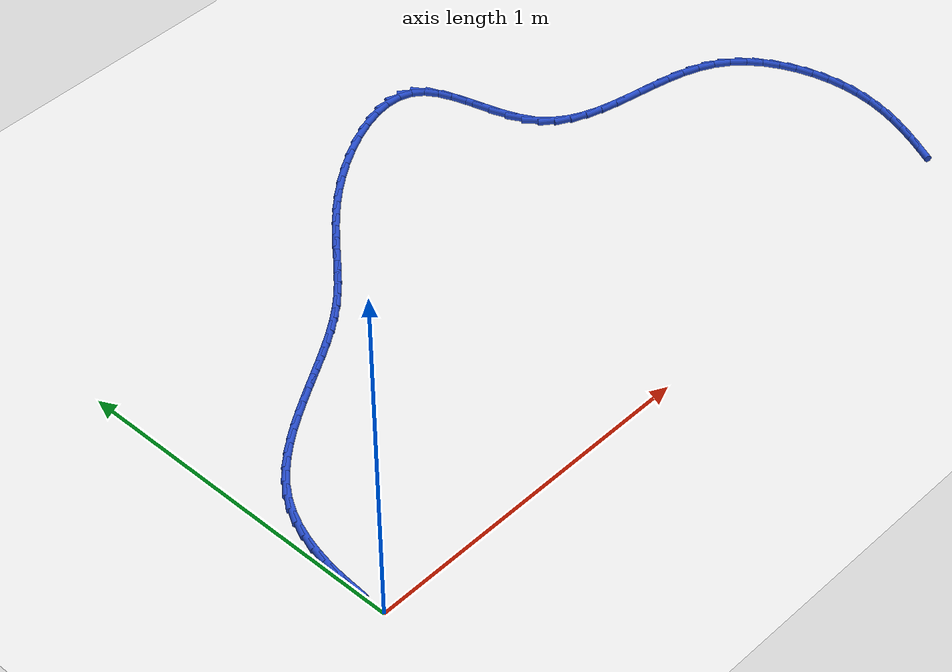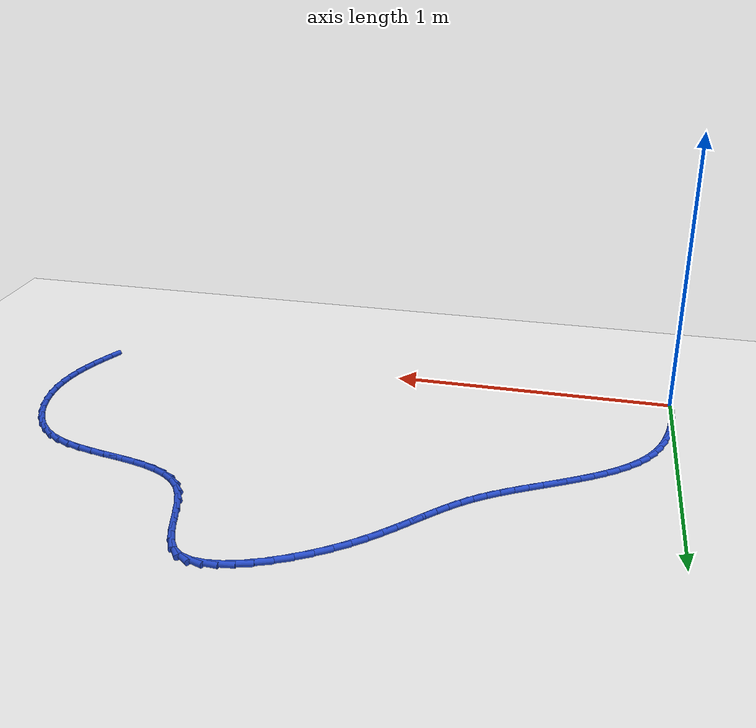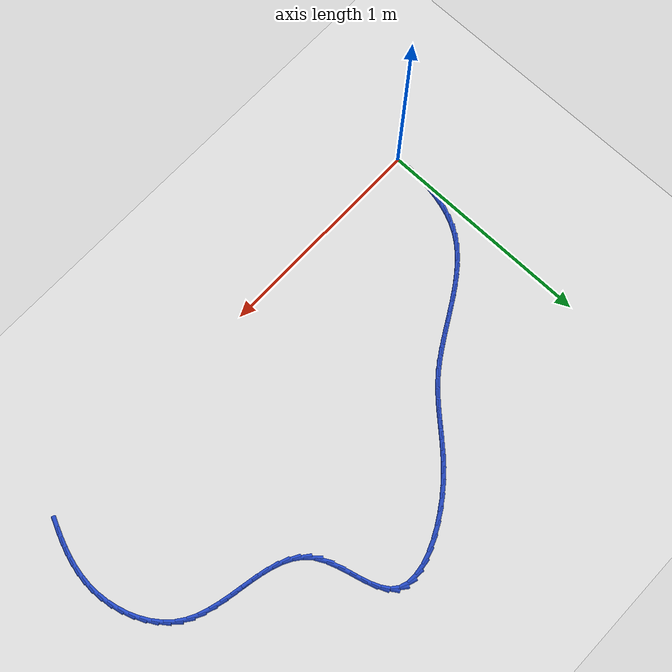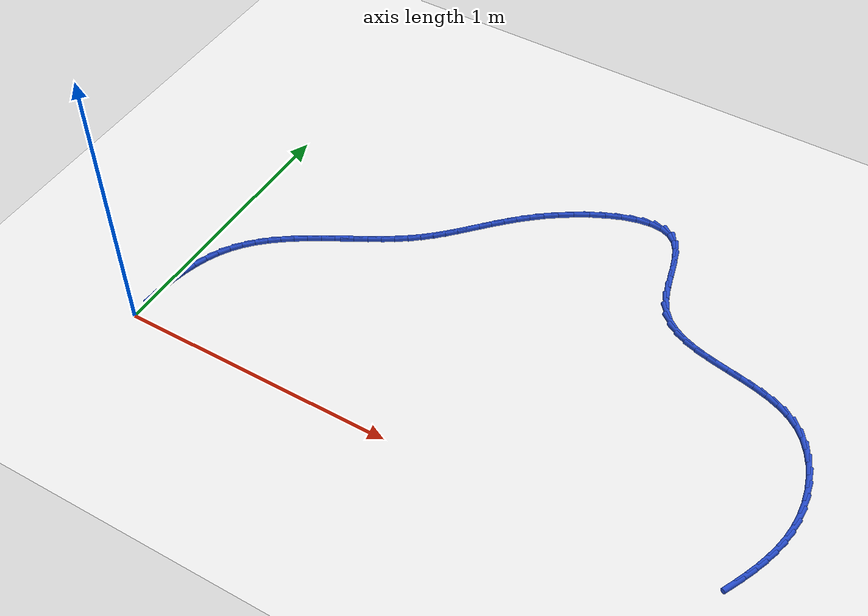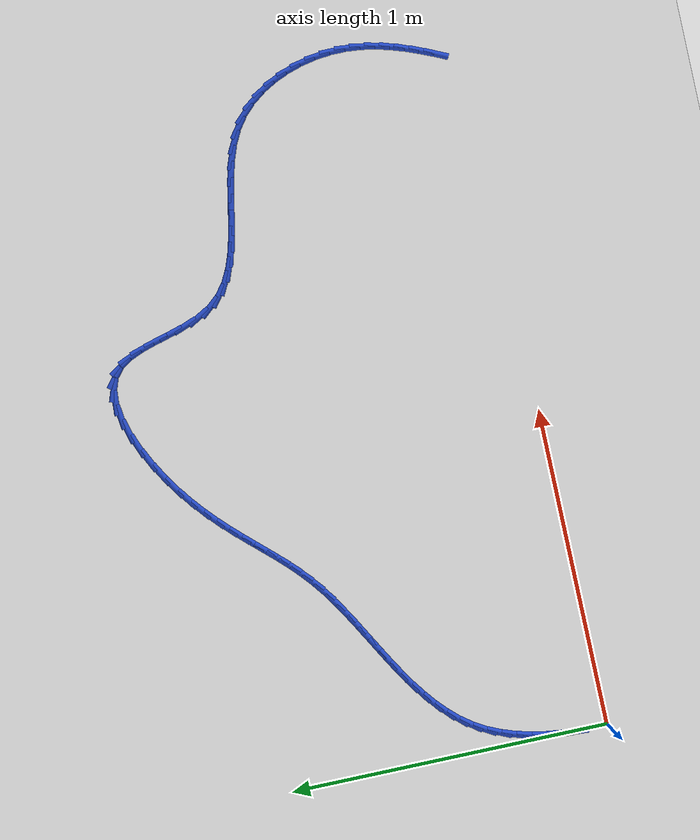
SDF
<sdf version="1.6">
 <world name="default">
  <model name="ground_plane">
   <static>1</static>
   <link name="link">
    <collision name="collision">
     <geometry><plane><normal>0 0 1</normal><size>100 100</size></plane></geometry>
     <surface><friction><ode><mu>100</mu><mu2>50</mu2></ode></friction></surface>
    </collision>
    <visual name="visual">
     <cast_shadows>0</cast_shadows>
     <geometry><plane><normal>0 0 1</normal><size>100 100</size></plane></geometry>
     <material>
      <script><uri>file://media/materials/scripts/gazebo.material</uri><name>Gazebo/WhiteGlow</name></script>
     </material>
    </visual>
   </link>
  </model>
  <model name="line">
   <link name="link_2">
    <pose>0.000913420278070266 0.09803996341378214 0.01 0 1.57 1.4947157895868406</pose>
    <collision name="collision">
     <geometry><cylinder><radius>0.01</radius><length>0.08</length></cylinder></geometry>
    </collision>
    <visual name="visual">
     <material>
      <script><name>Gazebo/Blue</name><uri>file://media/materials/scripts/gazebo.material</uri></script>
     </material>
     <geometry><cylinder><radius>0.01</radius><length>0.08</length></cylinder></geometry>
    </visual>
   </link>
   <link name="link_3">
    <pose>0.004639800676113368 0.14692484278581508 0.01 0 1.57 1.4414148175023616</pose>
    <collision name="collision">
     <geometry><cylinder><radius>0.01</radius><length>0.08</length></cylinder></geometry>
    </collision>
    <visual name="visual">
     <material>
      <script><name>Gazebo/Blue</name><uri>file://media/materials/scripts/gazebo.material</uri></script>
     </material>
     <geometry><cylinder><radius>0.01</radius><length>0.08</length></cylinder></geometry>
    </visual>
   </link>
   <link name="link_4">
    <pose>0.010917500078438155 0.1951746399153666 0.01 0 1.57 1.3802033425470173</pose>
    <collision name="collision">
     <geometry><cylinder><radius>0.01</radius><length>0.08</length></cylinder></geometry>
    </collision>
    <visual name="visual">
     <material>
      <script><name>Gazebo/Blue</name><uri>file://media/materials/scripts/gazebo.material</uri></script>
     </material>
     <geometry><cylinder><radius>0.01</radius><length>0.08</length></cylinder></geometry>
    </visual>
   </link>
   <link name="link_5">
    <pose>0.020025172608751883 0.2423805942880045 0.01 0 1.57 1.3098795944967991</pose>
    <collision name="collision">
     <geometry><cylinder><radius>0.01</radius><length>0.08</length></cylinder></geometry>
    </collision>
    <visual name="visual">
     <material>
      <script><name>Gazebo/Blue</name><uri>file://media/materials/scripts/gazebo.material</uri></script>
     </material>
     <geometry><cylinder><radius>0.01</radius><length>0.08</length></cylinder></geometry>
    </visual>
   </link>
   <link name="link_6">
    <pose>0.03224147239076184 0.28813394538929676 0.01 0 1.57 1.2292305687645277</pose>
    <collision name="collision">
     <geometry><cylinder><radius>0.01</radius><length>0.08</length></cylinder></geometry>
    </collision>
    <visual name="visual">
     <material>
      <script><name>Gazebo/Blue</name><uri>file://media/materials/scripts/gazebo.material</uri></script>
     </material>
     <geometry><cylinder><radius>0.01</radius><length>0.08</length></cylinder></geometry>
    </visual>
   </link>
   <link name="link_7">
    <pose>0.047845053548175295 0.3320259327048114 0.01 0 1.57 1.137212159363858</pose>
    <collision name="collision">
     <geometry><cylinder><radius>0.01</radius><length>0.08</length></cylinder></geometry>
    </collision>
    <visual name="visual">
     <material>
      <script><name>Gazebo/Blue</name><uri>file://media/materials/scripts/gazebo.material</uri></script>
     </material>
     <geometry><cylinder><radius>0.01</radius><length>0.08</length></cylinder></geometry>
    </visual>
   </link>
   <link name="link_8">
    <pose>0.0671145702046995 0.37364779572011625 0.01 0 1.57 1.0332599340760333</pose>
    <collision name="collision">
     <geometry><cylinder><radius>0.01</radius><length>0.08</length></cylinder></geometry>
    </collision>
    <visual name="visual">
     <material>
      <script><name>Gazebo/Blue</name><uri>file://media/materials/scripts/gazebo.material</uri></script>
     </material>
     <geometry><cylinder><radius>0.01</radius><length>0.08</length></cylinder></geometry>
    </visual>
   </link>
   <link name="link_9">
    <pose>0.09032819974240336 0.41259123659162755 0.01 0 1.57 0.9236243283278152</pose>
    <collision name="collision">
     <geometry><cylinder><radius>0.01</radius><length>0.08</length></cylinder></geometry>
    </collision>
    <visual name="visual">
     <material>
      <script><name>Gazebo/Blue</name><uri>file://media/materials/scripts/gazebo.material</uri></script>
     </material>
     <geometry><cylinder><radius>0.01</radius><length>0.08</length></cylinder></geometry>
    </visual>
   </link>
   <link name="link_10">
    <pose>0.11756962563614366 0.4486367109929215 0.01 0 1.57 0.8249873401306519</pose>
    <collision name="collision">
     <geometry><cylinder><radius>0.01</radius><length>0.08</length></cylinder></geometry>
    </collision>
    <visual name="visual">
     <material>
      <script><name>Gazebo/Blue</name><uri>file://media/materials/scripts/gazebo.material</uri></script>
     </material>
     <geometry><cylinder><radius>0.01</radius><length>0.08</length></cylinder></geometry>
    </visual>
   </link>
   <link name="link_11">
    <pose>0.1484300012942756 0.4820426678863737 0.01 0 1.57 0.7409636124235105</pose>
    <collision name="collision">
     <geometry><cylinder><radius>0.01</radius><length>0.08</length></cylinder></geometry>
    </collision>
    <visual name="visual">
     <material>
      <script><name>Gazebo/Blue</name><uri>file://media/materials/scripts/gazebo.material</uri></script>
     </material>
     <geometry><cylinder><radius>0.01</radius><length>0.08</length></cylinder></geometry>
    </visual>
   </link>
   <link name="link_12">
    <pose>0.18242369566501554 0.5131420744396951 0.01 0 1.57 0.6716165635296051</pose>
    <collision name="collision">
     <geometry><cylinder><radius>0.01</radius><length>0.08</length></cylinder></geometry>
    </collision>
    <visual name="visual">
     <material>
      <script><name>Gazebo/Blue</name><uri>file://media/materials/scripts/gazebo.material</uri></script>
     </material>
     <geometry><cylinder><radius>0.01</radius><length>0.08</length></cylinder></geometry>
    </visual>
   </link>
   <link name="link_13">
    <pose>0.21906507769658012 0.5422678978205978 0.01 0 1.57 0.616287298810233</pose>
    <collision name="collision">
     <geometry><cylinder><radius>0.01</radius><length>0.08</length></cylinder></geometry>
    </collision>
    <visual name="visual">
     <material>
      <script><name>Gazebo/Blue</name><uri>file://media/materials/scripts/gazebo.material</uri></script>
     </material>
     <geometry><cylinder><radius>0.01</radius><length>0.08</length></cylinder></geometry>
    </visual>
   </link>
   <link name="link_14">
    <pose>0.25786851633718605 0.5697531051967937 0.01 0 1.57 0.5740384557072363</pose>
    <collision name="collision">
     <geometry><cylinder><radius>0.01</radius><length>0.08</length></cylinder></geometry>
    </collision>
    <visual name="visual">
     <material>
      <script><name>Gazebo/Blue</name><uri>file://media/materials/scripts/gazebo.material</uri></script>
     </material>
     <geometry><cylinder><radius>0.01</radius><length>0.08</length></cylinder></geometry>
    </visual>
   </link>
   <link name="link_15">
    <pose>0.2983483805350497 0.5959306637359943 0.01 0 1.57 0.5439495653624512</pose>
    <collision name="collision">
     <geometry><cylinder><radius>0.01</radius><length>0.08</length></cylinder></geometry>
    </collision>
    <visual name="visual">
     <material>
      <script><name>Gazebo/Blue</name><uri>file://media/materials/scripts/gazebo.material</uri></script>
     </material>
     <geometry><cylinder><radius>0.01</radius><length>0.08</length></cylinder></geometry>
    </visual>
   </link>
   <link name="link_16">
    <pose>0.34001903923838767 0.6211335406059114 0.01 0 1.57 0.5252868296294332</pose>
    <collision name="collision">
     <geometry><cylinder><radius>0.01</radius><length>0.08</length></cylinder></geometry>
    </collision>
    <visual name="visual">
     <material>
      <script><name>Gazebo/Blue</name><uri>file://media/materials/scripts/gazebo.material</uri></script>
     </material>
     <geometry><cylinder><radius>0.01</radius><length>0.08</length></cylinder></geometry>
    </visual>
   </link>
   <link name="link_17">
    <pose>0.38239486139541656 0.6456947029742568 0.01 0 1.57 0.5175910837712329</pose>
    <collision name="collision">
     <geometry><cylinder><radius>0.01</radius><length>0.08</length></cylinder></geometry>
    </collision>
    <visual name="visual">
     <material>
      <script><name>Gazebo/Blue</name><uri>file://media/materials/scripts/gazebo.material</uri></script>
     </material>
     <geometry><cylinder><radius>0.01</radius><length>0.08</length></cylinder></geometry>
    </visual>
   </link>
   <link name="link_18">
    <pose>0.42499021595435316 0.6699471180087422 0.01 0 1.57 0.5207205984611785</pose>
    <collision name="collision">
     <geometry><cylinder><radius>0.01</radius><length>0.08</length></cylinder></geometry>
    </collision>
    <visual name="visual">
     <material>
      <script><name>Gazebo/Blue</name><uri>file://media/materials/scripts/gazebo.material</uri></script>
     </material>
     <geometry><cylinder><radius>0.01</radius><length>0.08</length></cylinder></geometry>
    </visual>
   </link>
   <link name="link_19">
    <pose>0.4673194718634136 0.6942237528770792 0.01 0 1.57 0.5348711903887335</pose>
    <collision name="collision">
     <geometry><cylinder><radius>0.01</radius><length>0.08</length></cylinder></geometry>
    </collision>
    <visual name="visual">
     <material>
      <script><name>Gazebo/Blue</name><uri>file://media/materials/scripts/gazebo.material</uri></script>
     </material>
     <geometry><cylinder><radius>0.01</radius><length>0.08</length></cylinder></geometry>
    </visual>
   </link>
   <link name="link_20">
    <pose>0.5088969980708147 0.7188575747469796 0.01 0 1.57 0.5605821735108621</pose>
    <collision name="collision">
     <geometry><cylinder><radius>0.01</radius><length>0.08</length></cylinder></geometry>
    </collision>
    <visual name="visual">
     <material>
      <script><name>Gazebo/Blue</name><uri>file://media/materials/scripts/gazebo.material</uri></script>
     </material>
     <geometry><cylinder><radius>0.01</radius><length>0.08</length></cylinder></geometry>
    </visual>
   </link>
   <link name="link_21">
    <pose>0.549237163524773 0.7441815507861551 0.01 0 1.57 0.5987229923804348</pose>
    <collision name="collision">
     <geometry><cylinder><radius>0.01</radius><length>0.08</length></cylinder></geometry>
    </collision>
    <visual name="visual">
     <material>
      <script><name>Gazebo/Blue</name><uri>file://media/materials/scripts/gazebo.material</uri></script>
     </material>
     <geometry><cylinder><radius>0.01</radius><length>0.08</length></cylinder></geometry>
    </visual>
   </link>
   <link name="link_22">
    <pose>0.5878543371735052 0.7705286481623177 0.01 0 1.57 0.6504222927535331</pose>
    <collision name="collision">
     <geometry><cylinder><radius>0.01</radius><length>0.08</length></cylinder></geometry>
    </collision>
    <visual name="visual">
     <material>
      <script><name>Gazebo/Blue</name><uri>file://media/materials/scripts/gazebo.material</uri></script>
     </material>
     <geometry><cylinder><radius>0.01</radius><length>0.08</length></cylinder></geometry>
    </visual>
   </link>
   <link name="link_23">
    <pose>0.6242636686467243 0.798231450913832 0.01 0 1.57 0.7102466502169098</pose>
    <collision name="collision">
     <geometry><cylinder><radius>0.01</radius><length>0.08</length></cylinder></geometry>
    </collision>
    <visual name="visual">
     <material>
      <script><name>Gazebo/Blue</name><uri>file://media/materials/scripts/gazebo.material</uri></script>
     </material>
     <geometry><cylinder><radius>0.01</radius><length>0.08</length></cylinder></geometry>
    </visual>
   </link>
   <link name="link_24">
    <pose>0.6582736409104464 0.8274785860234535 0.01 0 1.57 0.7610161418452425</pose>
    <collision name="collision">
     <geometry><cylinder><radius>0.01</radius><length>0.08</length></cylinder></geometry>
    </collision>
    <visual name="visual">
     <material>
      <script><name>Gazebo/Blue</name><uri>file://media/materials/scripts/gazebo.material</uri></script>
     </material>
     <geometry><cylinder><radius>0.01</radius><length>0.08</length></cylinder></geometry>
    </visual>
   </link>
   <link name="link_25">
    <pose>0.6904251228997973 0.8580992527695683 0.01 0 1.57 0.7985035697229289</pose>
    <collision name="collision">
     <geometry><cylinder><radius>0.01</radius><length>0.08</length></cylinder></geometry>
    </collision>
    <visual name="visual">
     <material>
      <script><name>Gazebo/Blue</name><uri>file://media/materials/scripts/gazebo.material</uri></script>
     </material>
     <geometry><cylinder><radius>0.01</radius><length>0.08</length></cylinder></geometry>
    </visual>
   </link>
   <link name="link_26">
    <pose>0.7213714030949564 0.8898674791128302 0.01 0 1.57 0.821769163624296</pose>
    <collision name="collision">
     <geometry><cylinder><radius>0.01</radius><length>0.08</length></cylinder></geometry>
    </collision>
    <visual name="visual">
     <material>
      <script><name>Gazebo/Blue</name><uri>file://media/materials/scripts/gazebo.material</uri></script>
     </material>
     <geometry><cylinder><radius>0.01</radius><length>0.08</length></cylinder></geometry>
    </visual>
   </link>
   <link name="link_27">
    <pose>0.7517657699761022 0.9225572930138927 0.01 0 1.57 0.8306027006182115</pose>
    <collision name="collision">
     <geometry><cylinder><radius>0.01</radius><length>0.08</length></cylinder></geometry>
    </collision>
    <visual name="visual">
     <material>
      <script><name>Gazebo/Blue</name><uri>file://media/materials/scripts/gazebo.material</uri></script>
     </material>
     <geometry><cylinder><radius>0.01</radius><length>0.08</length></cylinder></geometry>
    </visual>
   </link>
   <link name="link_28">
    <pose>0.7822615120234139 0.9559427224334098 0.01 0 1.57 0.8253837216076464</pose>
    <collision name="collision">
     <geometry><cylinder><radius>0.01</radius><length>0.08</length></cylinder></geometry>
    </collision>
    <visual name="visual">
     <material>
      <script><name>Gazebo/Blue</name><uri>file://media/materials/scripts/gazebo.material</uri></script>
     </material>
     <geometry><cylinder><radius>0.01</radius><length>0.08</length></cylinder></geometry>
    </visual>
   </link>
   <link name="link_29">
    <pose>0.8135119177170703 0.9897977953320349 0.01 0 1.57 0.8069713445529281</pose>
    <collision name="collision">
     <geometry><cylinder><radius>0.01</radius><length>0.08</length></cylinder></geometry>
    </collision>
    <visual name="visual">
     <material>
      <script><name>Gazebo/Blue</name><uri>file://media/materials/scripts/gazebo.material</uri></script>
     </material>
     <geometry><cylinder><radius>0.01</radius><length>0.08</length></cylinder></geometry>
    </visual>
   </link>
   <link name="link_30">
    <pose>0.84617027553725 1.0238965396704214 0.01 0 1.57 0.7766361946108075</pose>
    <collision name="collision">
     <geometry><cylinder><radius>0.01</radius><length>0.08</length></cylinder></geometry>
    </collision>
    <visual name="visual">
     <material>
      <script><name>Gazebo/Blue</name><uri>file://media/materials/scripts/gazebo.material</uri></script>
     </material>
     <geometry><cylinder><radius>0.01</radius><length>0.08</length></cylinder></geometry>
    </visual>
   </link>
   <link name="link_31">
    <pose>0.8808898739641324 1.0580129834092231 0.01 0 1.57 0.7360152615232175</pose>
    <collision name="collision">
     <geometry><cylinder><radius>0.01</radius><length>0.08</length></cylinder></geometry>
    </collision>
    <visual name="visual">
     <material>
      <script><name>Gazebo/Blue</name><uri>file://media/materials/scripts/gazebo.material</uri></script>
     </material>
     <geometry><cylinder><radius>0.01</radius><length>0.08</length></cylinder></geometry>
    </visual>
   </link>
   <link name="link_32">
    <pose>0.9183240014778962 1.0919211545090939 0.01 0 1.57 0.6870569364966587</pose>
    <collision name="collision">
     <geometry><cylinder><radius>0.01</radius><length>0.08</length></cylinder></geometry>
    </collision>
    <visual name="visual">
     <material>
      <script><name>Gazebo/Blue</name><uri>file://media/materials/scripts/gazebo.material</uri></script>
     </material>
     <geometry><cylinder><radius>0.01</radius><length>0.08</length></cylinder></geometry>
    </visual>
   </link>
   <link name="link_33">
    <pose>0.9591259465587201 1.125395080930687 0.01 0 1.57 0.6322761132818642</pose>
    <collision name="collision">
     <geometry><cylinder><radius>0.01</radius><length>0.08</length></cylinder></geometry>
    </collision>
    <visual name="visual">
     <material>
      <script><name>Gazebo/Blue</name><uri>file://media/materials/scripts/gazebo.material</uri></script>
     </material>
     <geometry><cylinder><radius>0.01</radius><length>0.08</length></cylinder></geometry>
    </visual>
   </link>
   <link name="link_34">
    <pose>1.0038480545519186 1.1581587943908582 0.01 0 1.57 0.5759994394089678</pose>
    <collision name="collision">
     <geometry><cylinder><radius>0.01</radius><length>0.08</length></cylinder></geometry>
    </collision>
    <visual name="visual">
     <material>
      <script><name>Gazebo/Blue</name><uri>file://media/materials/scripts/gazebo.material</uri></script>
     </material>
     <geometry><cylinder><radius>0.01</radius><length>0.08</length></cylinder></geometry>
    </visual>
   </link>
   <link name="link_35">
    <pose>1.0519226545113907 1.1893815924223268 0.01 0 1.57 0.5167653526301275</pose>
    <collision name="collision">
     <geometry><cylinder><radius>0.01</radius><length>0.08</length></cylinder></geometry>
    </collision>
    <visual name="visual">
     <material>
      <script><name>Gazebo/Blue</name><uri>file://media/materials/scripts/gazebo.material</uri></script>
     </material>
     <geometry><cylinder><radius>0.01</radius><length>0.08</length></cylinder></geometry>
    </visual>
   </link>
   <link name="link_36">
    <pose>1.102084079459959 1.2178870612839696 0.01 0 1.57 0.4497486660711636</pose>
    <collision name="collision">
     <geometry><cylinder><radius>0.01</radius><length>0.08</length></cylinder></geometry>
    </collision>
    <visual name="visual">
     <material>
      <script><name>Gazebo/Blue</name><uri>file://media/materials/scripts/gazebo.material</uri></script>
     </material>
     <geometry><cylinder><radius>0.01</radius><length>0.08</length></cylinder></geometry>
    </visual>
   </link>
   <link name="link_37">
    <pose>1.1530560858600418 1.2424935487576403 0.01 0 1.57 0.3689032916469637</pose>
    <collision name="collision">
     <geometry><cylinder><radius>0.01</radius><length>0.08</length></cylinder></geometry>
    </collision>
    <visual name="visual">
     <material>
      <script><name>Gazebo/Blue</name><uri>file://media/materials/scripts/gazebo.material</uri></script>
     </material>
     <geometry><cylinder><radius>0.01</radius><length>0.08</length></cylinder></geometry>
    </visual>
   </link>
   <link name="link_38">
    <pose>1.2035624301740597 1.2620194026251952 0.01 0 1.57 0.26556814103729826</pose>
    <collision name="collision">
     <geometry><cylinder><radius>0.01</radius><length>0.08</length></cylinder></geometry>
    </collision>
    <visual name="visual">
     <material>
      <script><name>Gazebo/Blue</name><uri>file://media/materials/scripts/gazebo.material</uri></script>
     </material>
     <geometry><cylinder><radius>0.01</radius><length>0.08</length></cylinder></geometry>
    </visual>
   </link>
   <link name="link_39">
    <pose>1.252326868864432 1.275282970668489 0.01 0 1.57 0.12653565919637141</pose>
    <collision name="collision">
     <geometry><cylinder><radius>0.01</radius><length>0.08</length></cylinder></geometry>
    </collision>
    <visual name="visual">
     <material>
      <script><name>Gazebo/Blue</name><uri>file://media/materials/scripts/gazebo.material</uri></script>
     </material>
     <geometry><cylinder><radius>0.01</radius><length>0.08</length></cylinder></geometry>
    </visual>
   </link>
   <link name="link_40">
    <pose>1.2980731583935783 1.2811026006693764 0.01 0 1.57 -0.06758885342199733</pose>
    <collision name="collision">
     <geometry><cylinder><radius>0.01</radius><length>0.08</length></cylinder></geometry>
    </collision>
    <visual name="visual">
     <material>
      <script><name>Gazebo/Blue</name><uri>file://media/materials/scripts/gazebo.material</uri></script>
     </material>
     <geometry><cylinder><radius>0.01</radius><length>0.08</length></cylinder></geometry>
    </visual>
   </link>
   <link name="link_41">
    <pose>1.3395250552239184 1.2782966404097134 0.01 0 1.57 -0.3380338043413268</pose>
    <collision name="collision">
     <geometry><cylinder><radius>0.01</radius><length>0.08</length></cylinder></geometry>
    </collision>
    <visual name="visual">
     <material>
      <script><name>Gazebo/Blue</name><uri>file://media/materials/scripts/gazebo.material</uri></script>
     </material>
     <geometry><cylinder><radius>0.01</radius><length>0.08</length></cylinder></geometry>
    </visual>
   </link>
   <link name="link_42">
    <pose>1.375406315817873 1.2656834376713553 0.01 0 1.57 -0.6812646831049045</pose>
    <collision name="collision">
     <geometry><cylinder><radius>0.01</radius><length>0.08</length></cylinder></geometry>
    </collision>
    <visual name="visual">
     <material>
      <script><name>Gazebo/Blue</name><uri>file://media/materials/scripts/gazebo.material</uri></script>
     </material>
     <geometry><cylinder><radius>0.01</radius><length>0.08</length></cylinder></geometry>
    </visual>
   </link>
   <link name="link_43">
    <pose>1.404471682256628 1.242118540138018 0.01 0 1.57 -0.9909428610644206</pose>
    <collision name="collision">
     <geometry><cylinder><radius>0.01</radius><length>0.08</length></cylinder></geometry>
    </collision>
    <visual name="visual">
     <material>
      <script><name>Gazebo/Blue</name><uri>file://media/materials/scripts/gazebo.material</uri></script>
     </material>
     <geometry><cylinder><radius>0.01</radius><length>0.08</length></cylinder></geometry>
    </visual>
   </link>
   <link name="link_44">
    <pose>1.4267927477637337 1.2080384461153526 0.01 0 1.57 -1.17768620382468</pose>
    <collision name="collision">
     <geometry><cylinder><radius>0.01</radius><length>0.08</length></cylinder></geometry>
    </collision>
    <visual name="visual">
     <material>
      <script><name>Gazebo/Blue</name><uri>file://media/materials/scripts/gazebo.material</uri></script>
     </material>
     <geometry><cylinder><radius>0.01</radius><length>0.08</length></cylinder></geometry>
    </visual>
   </link>
   <link name="link_45">
    <pose>1.4442196929021902 1.166014943669567 0.01 0 1.57 -1.272831639590615</pose>
    <collision name="collision">
     <geometry><cylinder><radius>0.01</radius><length>0.08</length></cylinder></geometry>
    </collision>
    <visual name="visual">
     <material>
      <script><name>Gazebo/Blue</name><uri>file://media/materials/scripts/gazebo.material</uri></script>
     </material>
     <geometry><cylinder><radius>0.01</radius><length>0.08</length></cylinder></geometry>
    </visual>
   </link>
   <link name="link_46">
    <pose>1.4587286544277087 1.1187710380506517 0.01 0 1.57 -1.3045198656573231</pose>
    <collision name="collision">
     <geometry><cylinder><radius>0.01</radius><length>0.08</length></cylinder></geometry>
    </collision>
    <visual name="visual">
     <material>
      <script><name>Gazebo/Blue</name><uri>file://media/materials/scripts/gazebo.material</uri></script>
     </material>
     <geometry><cylinder><radius>0.01</radius><length>0.08</length></cylinder></geometry>
    </visual>
   </link>
   <link name="link_47">
    <pose>1.472295769096004 1.0690297345085982 0.01 0 1.57 -1.284039359393539</pose>
    <collision name="collision">
     <geometry><cylinder><radius>0.01</radius><length>0.08</length></cylinder></geometry>
    </collision>
    <visual name="visual">
     <material>
      <script><name>Gazebo/Blue</name><uri>file://media/materials/scripts/gazebo.material</uri></script>
     </material>
     <geometry><cylinder><radius>0.01</radius><length>0.08</length></cylinder></geometry>
    </visual>
   </link>
   <link name="link_48">
    <pose>1.486897173662789 1.019514038293397 0.01 0 1.57 -1.209220123331976</pose>
    <collision name="collision">
     <geometry><cylinder><radius>0.01</radius><length>0.08</length></cylinder></geometry>
    </collision>
    <visual name="visual">
     <material>
      <script><name>Gazebo/Blue</name><uri>file://media/materials/scripts/gazebo.material</uri></script>
     </material>
     <geometry><cylinder><radius>0.01</radius><length>0.08</length></cylinder></geometry>
    </visual>
   </link>
   <link name="link_49">
    <pose>1.5045090048837781 0.9729469546550393 0.01 0 1.57 -1.0659769933967027</pose>
    <collision name="collision">
     <geometry><cylinder><radius>0.01</radius><length>0.08</length></cylinder></geometry>
    </collision>
    <visual name="visual">
     <material>
      <script><name>Gazebo/Blue</name><uri>file://media/materials/scripts/gazebo.material</uri></script>
     </material>
     <geometry><cylinder><radius>0.01</radius><length>0.08</length></cylinder></geometry>
    </visual>
   </link>
   <link name="link_50">
    <pose>1.5271071053052683 0.932051092990625 0.01 0 1.57 -0.8556877142055355</pose>
    <collision name="collision">
     <geometry><cylinder><radius>0.01</radius><length>0.08</length></cylinder></geometry>
    </collision>
    <visual name="visual">
     <material>
      <script><name>Gazebo/Blue</name><uri>file://media/materials/scripts/gazebo.material</uri></script>
     </material>
     <geometry><cylinder><radius>0.01</radius><length>0.08</length></cylinder></geometry>
    </visual>
   </link>
   <link name="link_51">
    <pose>1.5560522328969857 0.8987214786895014 0.01 0 1.57 -0.6505263449974029</pose>
    <collision name="collision">
     <geometry><cylinder><radius>0.01</radius><length>0.08</length></cylinder></geometry>
    </collision>
    <visual name="visual">
     <material>
      <script><name>Gazebo/Blue</name><uri>file://media/materials/scripts/gazebo.material</uri></script>
     </material>
     <geometry><cylinder><radius>0.01</radius><length>0.08</length></cylinder></geometry>
    </visual>
   </link>
   <link name="link_52">
    <pose>1.5907940190582714 0.8722817545268398 0.01 0 1.57 -0.4819558796842431</pose>
    <collision name="collision">
     <geometry><cylinder><radius>0.01</radius><length>0.08</length></cylinder></geometry>
    </collision>
    <visual name="visual">
     <material>
      <script><name>Gazebo/Blue</name><uri>file://media/materials/scripts/gazebo.material</uri></script>
     </material>
     <geometry><cylinder><radius>0.01</radius><length>0.08</length></cylinder></geometry>
    </visual>
   </link>
   <link name="link_53">
    <pose>1.6304120031551108 0.8515576118417504 0.01 0 1.57 -0.35560250245032154</pose>
    <collision name="collision">
     <geometry><cylinder><radius>0.01</radius><length>0.08</length></cylinder></geometry>
    </collision>
    <visual name="visual">
     <material>
      <script><name>Gazebo/Blue</name><uri>file://media/materials/scripts/gazebo.material</uri></script>
     </material>
     <geometry><cylinder><radius>0.01</radius><length>0.08</length></cylinder></geometry>
    </visual>
   </link>
   <link name="link_54">
    <pose>1.6739857245534877 0.8353747419733429 0.01 0 1.57 -0.26833491926444314</pose>
    <collision name="collision">
     <geometry><cylinder><radius>0.01</radius><length>0.08</length></cylinder></geometry>
    </collision>
    <visual name="visual">
     <material>
      <script><name>Gazebo/Blue</name><uri>file://media/materials/scripts/gazebo.material</uri></script>
     </material>
     <geometry><cylinder><radius>0.01</radius><length>0.08</length></cylinder></geometry>
    </visual>
   </link>
   <link name="link_55">
    <pose>1.720594722619386 0.8225588362607277 0.01 0 1.57 -0.2146704180902622</pose>
    <collision name="collision">
     <geometry><cylinder><radius>0.01</radius><length>0.08</length></cylinder></geometry>
    </collision>
    <visual name="visual">
     <material>
      <script><name>Gazebo/Blue</name><uri>file://media/materials/scripts/gazebo.material</uri></script>
     </material>
     <geometry><cylinder><radius>0.01</radius><length>0.08</length></cylinder></geometry>
    </visual>
   </link>
   <link name="link_56">
    <pose>1.7693185367187916 0.8119355860430147 0.01 0 1.57 -0.19008981165271416</pose>
    <collision name="collision">
     <geometry><cylinder><radius>0.01</radius><length>0.08</length></cylinder></geometry>
    </collision>
    <visual name="visual">
     <material>
      <script><name>Gazebo/Blue</name><uri>file://media/materials/scripts/gazebo.material</uri></script>
     </material>
     <geometry><cylinder><radius>0.01</radius><length>0.08</length></cylinder></geometry>
    </visual>
   </link>
   <link name="link_57">
    <pose>1.8192367062176866 0.8023306826593134 0.01 0 1.57 -0.19207291950445188</pose>
    <collision name="collision">
     <geometry><cylinder><radius>0.01</radius><length>0.08</length></cylinder></geometry>
    </collision>
    <visual name="visual">
     <material>
      <script><name>Gazebo/Blue</name><uri>file://media/materials/scripts/gazebo.material</uri></script>
     </material>
     <geometry><cylinder><radius>0.01</radius><length>0.08</length></cylinder></geometry>
    </visual>
   </link>
   <link name="link_58">
    <pose>1.8694287704820582 0.7925698174487343 0.01 0 1.57 -0.22022681116998813</pose>
    <collision name="collision">
     <geometry><cylinder><radius>0.01</radius><length>0.08</length></cylinder></geometry>
    </collision>
    <visual name="visual">
     <material>
      <script><name>Gazebo/Blue</name><uri>file://media/materials/scripts/gazebo.material</uri></script>
     </material>
     <geometry><cylinder><radius>0.01</radius><length>0.08</length></cylinder></geometry>
    </visual>
   </link>
   <link name="link_59">
    <pose>1.918974268877889 0.7814786817503874 0.01 0 1.57 -0.2761320272393438</pose>
    <collision name="collision">
     <geometry><cylinder><radius>0.01</radius><length>0.08</length></cylinder></geometry>
    </collision>
    <visual name="visual">
     <material>
      <script><name>Gazebo/Blue</name><uri>file://media/materials/scripts/gazebo.material</uri></script>
     </material>
     <geometry><cylinder><radius>0.01</radius><length>0.08</length></cylinder></geometry>
    </visual>
   </link>
   <link name="link_60">
    <pose>1.966952740771164 0.7678829669033825 0.01 0 1.57 -0.362917032537193</pose>
    <collision name="collision">
     <geometry><cylinder><radius>0.01</radius><length>0.08</length></cylinder></geometry>
    </collision>
    <visual name="visual">
     <material>
      <script><name>Gazebo/Blue</name><uri>file://media/materials/scripts/gazebo.material</uri></script>
     </material>
     <geometry><cylinder><radius>0.01</radius><length>0.08</length></cylinder></geometry>
    </visual>
   </link>
   <link name="link_61">
    <pose>2.0124437255278673 0.7506083642468296 0.01 0 1.57 -0.48408395912542634</pose>
    <collision name="collision">
     <geometry><cylinder><radius>0.01</radius><length>0.08</length></cylinder></geometry>
    </collision>
    <visual name="visual">
     <material>
      <script><name>Gazebo/Blue</name><uri>file://media/materials/scripts/gazebo.material</uri></script>
     </material>
     <geometry><cylinder><radius>0.01</radius><length>0.08</length></cylinder></geometry>
    </visual>
   </link>
   <link name="link_62">
    <pose>2.0545267625139836 0.7284805651198384 0.01 0 1.57 -0.6388505090146699</pose>
    <collision name="collision">
     <geometry><cylinder><radius>0.01</radius><length>0.08</length></cylinder></geometry>
    </collision>
    <visual name="visual">
     <material>
      <script><name>Gazebo/Blue</name><uri>file://media/materials/scripts/gazebo.material</uri></script>
     </material>
     <geometry><cylinder><radius>0.01</radius><length>0.08</length></cylinder></geometry>
    </visual>
   </link>
   <link name="link_63">
    <pose>2.092317512462558 0.700411158965178 0.01 0 1.57 -0.7973936949464182</pose>
    <collision name="collision">
     <geometry><cylinder><radius>0.01</radius><length>0.08</length></cylinder></geometry>
    </collision>
    <visual name="visual">
     <material>
      <script><name>Gazebo/Blue</name><uri>file://media/materials/scripts/gazebo.material</uri></script>
     </material>
     <geometry><cylinder><radius>0.01</radius><length>0.08</length></cylinder></geometry>
    </visual>
   </link>
   <link name="link_64">
    <pose>2.1254293294177824 0.6664952704877162 0.01 0 1.57 -0.9388658881188598</pose>
    <collision name="collision">
     <geometry><cylinder><radius>0.01</radius><length>0.08</length></cylinder></geometry>
    </collision>
    <visual name="visual">
     <material>
      <script><name>Gazebo/Blue</name><uri>file://media/materials/scripts/gazebo.material</uri></script>
     </material>
     <geometry><cylinder><radius>0.01</radius><length>0.08</length></cylinder></geometry>
    </visual>
   </link>
   <link name="link_65">
    <pose>2.1538379235372873 0.6276897222051803 0.01 0 1.57 -1.064475225966758</pose>
    <collision name="collision">
     <geometry><cylinder><radius>0.01</radius><length>0.08</length></cylinder></geometry>
    </collision>
    <visual name="visual">
     <material>
      <script><name>Gazebo/Blue</name><uri>file://media/materials/scripts/gazebo.material</uri></script>
     </material>
     <geometry><cylinder><radius>0.01</radius><length>0.08</length></cylinder></geometry>
    </visual>
   </link>
   <link name="link_66">
    <pose>2.177527201439901 0.5849708281587657 0.01 0 1.57 -1.1773017465877713</pose>
    <collision name="collision">
     <geometry><cylinder><radius>0.01</radius><length>0.08</length></cylinder></geometry>
    </collision>
    <visual name="visual">
     <material>
      <script><name>Gazebo/Blue</name><uri>file://media/materials/scripts/gazebo.material</uri></script>
     </material>
     <geometry><cylinder><radius>0.01</radius><length>0.08</length></cylinder></geometry>
    </visual>
   </link>
   <link name="link_67">
    <pose>2.196481069744455 0.5393149023896676 0.01 0 1.57 -1.2809322820455342</pose>
    <collision name="collision">
     <geometry><cylinder><radius>0.01</radius><length>0.08</length></cylinder></geometry>
    </collision>
    <visual name="visual">
     <material>
      <script><name>Gazebo/Blue</name><uri>file://media/materials/scripts/gazebo.material</uri></script>
     </material>
     <geometry><cylinder><radius>0.01</radius><length>0.08</length></cylinder></geometry>
    </visual>
   </link>
   <link name="link_68">
    <pose>2.210683435069776 0.49169825893908226 0.01 0 1.57 -1.37905433625036</pose>
    <collision name="collision">
     <geometry><cylinder><radius>0.01</radius><length>0.08</length></cylinder></geometry>
    </collision>
    <visual name="visual">
     <material>
      <script><name>Gazebo/Blue</name><uri>file://media/materials/scripts/gazebo.material</uri></script>
     </material>
     <geometry><cylinder><radius>0.01</radius><length>0.08</length></cylinder></geometry>
    </visual>
   </link>
   <link name="link_69">
    <pose>2.220118204034697 0.4430972118482046 0.01 0 1.57 -1.4754035051091712</pose>
    <collision name="collision">
     <geometry><cylinder><radius>0.01</radius><length>0.08</length></cylinder></geometry>
    </collision>
    <visual name="visual">
     <material>
      <script><name>Gazebo/Blue</name><uri>file://media/materials/scripts/gazebo.material</uri></script>
     </material>
     <geometry><cylinder><radius>0.01</radius><length>0.08</length></cylinder></geometry>
    </visual>
   </link>
   <link name="link_70">
    <pose>2.224769283258044 0.39448807515823003 0.01 0 1.57 1.5681327462050796</pose>
    <collision name="collision">
     <geometry><cylinder><radius>0.01</radius><length>0.08</length></cylinder></geometry>
    </collision>
    <visual name="visual">
     <material>
      <script><name>Gazebo/Blue</name><uri>file://media/materials/scripts/gazebo.material</uri></script>
     </material>
     <geometry><cylinder><radius>0.01</radius><length>0.08</length></cylinder></geometry>
    </visual>
   </link>
   <link name="link_71">
    <pose>2.224642269766901 0.3468029436267451 0.01 0 1.57 1.4723205233510952</pose>
    <collision name="collision">
     <geometry><cylinder><radius>0.01</radius><length>0.08</length></cylinder></geometry>
    </collision>
    <visual name="visual">
     <material>
      <script><name>Gazebo/Blue</name><uri>file://media/materials/scripts/gazebo.material</uri></script>
     </material>
     <geometry><cylinder><radius>0.01</radius><length>0.08</length></cylinder></geometry>
    </visual>
   </link>
   <link name="link_72">
    <pose>2.2200522413773234 0.3003429871057611 0.01 0 1.57 1.3855771424489935</pose>
    <collision name="collision">
     <geometry><cylinder><radius>0.01</radius><length>0.08</length></cylinder></geometry>
    </collision>
    <visual name="visual">
     <material>
      <script><name>Gazebo/Blue</name><uri>file://media/materials/scripts/gazebo.material</uri></script>
     </material>
     <geometry><cylinder><radius>0.01</radius><length>0.08</length></cylinder></geometry>
    </visual>
   </link>
   <link name="link_73">
    <pose>2.2115450341750384 0.25493893868774525 0.01 0 1.57 1.3102207452271597</pose>
    <collision name="collision">
     <geometry><cylinder><radius>0.01</radius><length>0.08</length></cylinder></geometry>
    </collision>
    <visual name="visual">
     <material>
      <script><name>Gazebo/Blue</name><uri>file://media/materials/scripts/gazebo.material</uri></script>
     </material>
     <geometry><cylinder><radius>0.01</radius><length>0.08</length></cylinder></geometry>
    </visual>
   </link>
   <link name="link_74">
    <pose>2.1996720036892596 0.21041027921790162 0.01 0 1.57 1.2474813245618075</pose>
    <collision name="collision">
     <geometry><cylinder><radius>0.01</radius><length>0.08</length></cylinder></geometry>
    </collision>
    <visual name="visual">
     <material>
      <script><name>Gazebo/Blue</name><uri>file://media/materials/scripts/gazebo.material</uri></script>
     </material>
     <geometry><cylinder><radius>0.01</radius><length>0.08</length></cylinder></geometry>
    </visual>
   </link>
   <link name="link_75">
    <pose>2.1849845054492048 0.1665764895414343 0.01 0 1.57 1.197818101572983</pose>
    <collision name="collision">
     <geometry><cylinder><radius>0.01</radius><length>0.08</length></cylinder></geometry>
    </collision>
    <visual name="visual">
     <material>
      <script><name>Gazebo/Blue</name><uri>file://media/materials/scripts/gazebo.material</uri></script>
     </material>
     <geometry><cylinder><radius>0.01</radius><length>0.08</length></cylinder></geometry>
    </visual>
   </link>
   <link name="link_76">
    <pose>2.168033894984086 0.12325705050354711 0.01 0 1.57 1.161197901994755</pose>
    <collision name="collision">
     <geometry><cylinder><radius>0.01</radius><length>0.08</length></cylinder></geometry>
    </collision>
    <visual name="visual">
     <material>
      <script><name>Gazebo/Blue</name><uri>file://media/materials/scripts/gazebo.material</uri></script>
     </material>
     <geometry><cylinder><radius>0.01</radius><length>0.08</length></cylinder></geometry>
    </visual>
   </link>
   <link name="link_77">
    <pose>2.149371527823119 0.08027144294944447 0.01 0 1.57 1.1373493947982103</pose>
    <collision name="collision">
     <geometry><cylinder><radius>0.01</radius><length>0.08</length></cylinder></geometry>
    </collision>
    <visual name="visual">
     <material>
      <script><name>Gazebo/Blue</name><uri>file://media/materials/scripts/gazebo.material</uri></script>
     </material>
     <geometry><cylinder><radius>0.01</radius><length>0.08</length></cylinder></geometry>
    </visual>
   </link>
  </model>
 </world>
</sdf>
